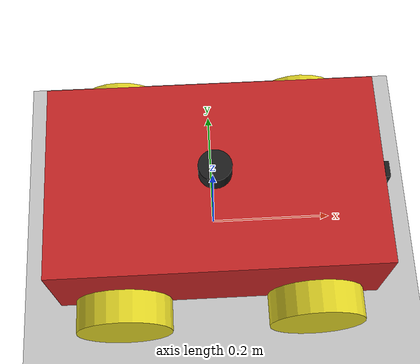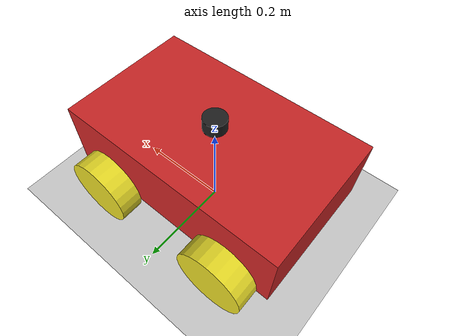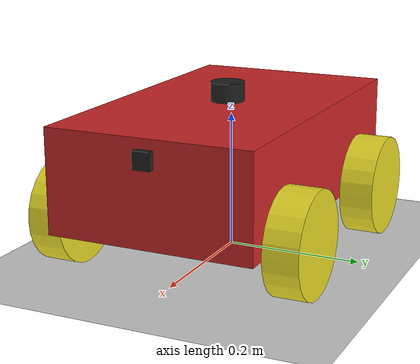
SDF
<sdf version="1.7">
 <world name="empty_world">
  <gravity>0 0 -9.81</gravity>
  <scene><ambient>0.4 0.4 0.4 1</ambient><background>0.7 0.7 0.7 1</background><shadows>1</shadows></scene>
  <model name="ground_plane">
   <static>1</static>
   <link name="link">
    <collision name="collision">
     <geometry><plane><normal>0 0 1</normal><size>100 100</size></plane></geometry>
     <surface>
      <contact><collide_bitmask>65535</collide_bitmask></contact>
      <friction><ode><mu>100</mu><mu2>50</mu2></ode></friction>
     </surface>
    </collision>
    <visual name="visual">
     <cast_shadows>0</cast_shadows>
     <geometry><plane><normal>0 0 1</normal><size>100 100</size></plane></geometry>
     <material>
      <script><uri>file://media/materials/scripts/gazebo.material</uri><name>Gazebo/Grey</name></script>
     </material>
    </visual>
   </link>
  </model>
  <light name="sun" type="directional">
   <pose>0 0 10 0 -0 0</pose>
   <diffuse>0.8 0.8 0.8 1</diffuse>
   <specular>0.2 0.2 0.2 1</specular>
   <attenuation>
    <range>1000</range>
    <constant>0.9</constant>
    <linear>0.01</linear>
    <quadratic>0.001</quadratic>
   </attenuation>
   <direction>-0.5 0.1 -0.9</direction>
   <spot><inner_angle>0</inner_angle><outer_angle>0</outer_angle><falloff>0</falloff></spot>
  </light>
  <magnetic_field>6e-06 2.3e-05 -4.2e-05</magnetic_field>
  <atmosphere type="adiabatic"/>
  <physics type="ode">
   <max_step_size>0.001</max_step_size>
   <real_time_factor>1</real_time_factor>
   <real_time_update_rate>1000</real_time_update_rate>
  </physics>
  <audio><device>default</device></audio>
  <spherical_coordinates>
   <surface_model>EARTH_WGS84</surface_model>
   <latitude_deg>0</latitude_deg>
   <longitude_deg>0</longitude_deg>
   <elevation>0</elevation>
   <heading_deg>0</heading_deg>
  </spherical_coordinates>
  <model name="differential_drive_robot">
   <link name="dummy">
    <inertial>
     <pose>0.000418 0 0.000222 0 -0 0</pose>
     <mass>61.175</mass>
     <inertia>
      <ixx>0.572662</ixx>
      <ixy>0</ixy>
      <ixz>-0.00122311</ixz>
      <iyy>1.39221</iyy>
      <iyz>0</iyz>
      <izz>1.73419</izz>
     </inertia>
    </inertial>
    <collision name="dummy_fixed_joint_lump__body_link_collision">
     <geometry><box><size>0.5 0.3 0.15</size></box></geometry>
     <surface><friction><ode><mu>0.2</mu><mu2>0.2</mu2></ode></friction></surface>
    </collision>
    <collision name="dummy_fixed_joint_lump__camera_link_collision_1">
     <pose>0.256 0 0.048 0 -0 0</pose>
     <geometry><box><size>0.05 0.05 0.05</size></box></geometry>
    </collision>
    <collision name="dummy_fixed_joint_lump__lidar_link_collision_2">
     <pose>0 0 0.088 0 -0 0</pose>
     <geometry><cylinder><length>0.06</length><radius>0.05</radius></cylinder></geometry>
    </collision>
    <visual name="dummy_fixed_joint_lump__body_link_visual">
     <geometry><box><size>0.5 0.3 0.15</size></box></geometry>
     <material>
      <script><name>Gazebo/Red</name><uri>file://media/materials/scripts/gazebo.material</uri></script>
     </material>
    </visual>
    <visual name="dummy_fixed_joint_lump__camera_link_visual_1">
     <pose>0.256 0 0.048 0 -0 0</pose>
     <geometry><box><size>0.01 0.025 0.025</size></box></geometry>
     <material>
      <script><name>Gazebo/Black</name><uri>file://media/materials/scripts/gazebo.material</uri></script>
     </material>
    </visual>
    <visual name="dummy_fixed_joint_lump__lidar_link_visual_2">
     <pose>0 0 0.088 0 -0 0</pose>
     <geometry><cylinder><length>0.03</length><radius>0.025</radius></cylinder></geometry>
     <material>
      <script><name>Gazebo/Black</name><uri>file://media/materials/scripts/gazebo.material</uri></script>
     </material>
    </visual>
    <sensor name="camera" type="camera">
     <visualize>1</visualize>
     <always_on>1</always_on>
     <update_rate>10</update_rate>
     <camera>
      <horizontal_fov>1.089</horizontal_fov>
      <image><format>R8G8B8</format><width>640</width><height>480</height></image>
      <clip><near>0.05</near><far>8</far></clip>
     </camera>
     <plugin name="camera_controller" filename="libgazebo_ros_camera.so">
      <ros>
       <remapping>image:=/camera/image_raw</remapping>
       <remapping>camera_info:=/camera/camera_info</remapping>
      </ros>
      <frame_name>camera_link_optical</frame_name>
     </plugin>
     <pose>0.256 0 0.048 0 -0 0</pose>
    </sensor>
    <sensor name="lidar" type="ray">
     <visualize>1</visualize>
     <always_on>1</always_on>
     <update_rate>10</update_rate>
     <ray>
      <scan>
       <horizontal>
        <samples>720</samples>
        <resolution>1</resolution>
        <min_angle>-3.14159</min_angle>
        <max_angle>3.14159</max_angle>
       </horizontal>
       <vertical><samples>1</samples><min_angle>0</min_angle><max_angle>0</max_angle></vertical>
      </scan>
      <range><min>0.2</min><max>4</max><resolution>0.01</resolution></range>
      <noise><type>gaussian</type><mean>0</mean><stddev>0.01</stddev></noise>
     </ray>
     <plugin name="laser_controller" filename="libgazebo_ros_ray_sensor.so">
      <ros><argument>~/out:=scan</argument></ros>
      <output_type>sensor_msgs/LaserScan</output_type>
      <frame_name>laser_frame</frame_name>
     </plugin>
     <pose>0 0 0.088 0 -0 0</pose>
    </sensor>
   </link>
   <joint name="wheel1_joint" type="revolute">
    <pose relative_to="dummy">0.15 -0.175 -0.07 0 -0 0</pose>
    <parent>dummy</parent>
    <child>wheel1_link</child>
    <axis>
     <xyz>0 1 0</xyz>
     <limit><effort>1000</effort><velocity>1000</velocity><lower>-1e+16</lower><upper>1e+16</upper></limit>
     <dynamics>
      <damping>1</damping>
      <friction>1</friction>
      <spring_reference>0</spring_reference>
      <spring_stiffness>0</spring_stiffness>
     </dynamics>
    </axis>
   </joint>
   <link name="wheel1_link">
    <pose relative_to="wheel1_joint">0 0 0 0 -0 0</pose>
    <inertial>
     <mass>2.39448</mass>
     <inertia>
      <ixx>0.00386609</ixx>
      <ixy>0</ixy>
      <ixz>0</ixz>
      <iyy>0.00386609</iyy>
      <iyz>0</iyz>
      <izz>0.00673448</izz>
     </inertia>
    </inertial>
    <collision name="wheel1_link_collision">
     <pose>0 0 0 1.57079 -0 0</pose>
     <geometry><cylinder><length>0.05</length><radius>0.075</radius></cylinder></geometry>
     <surface><friction><ode><mu>0.2</mu><mu2>0.2</mu2></ode></friction></surface>
    </collision>
    <visual name="wheel1_link_visual">
     <pose>0 0 0 1.57079 -0 0</pose>
     <geometry><cylinder><length>0.05</length><radius>0.075</radius></cylinder></geometry>
     <material>
      <script><name>Gazebo/Yellow</name><uri>file://media/materials/scripts/gazebo.material</uri></script>
     </material>
    </visual>
   </link>
   <joint name="wheel2_joint" type="revolute">
    <pose relative_to="dummy">0.15 0.175 -0.07 0 -0 0</pose>
    <parent>dummy</parent>
    <child>wheel2_link</child>
    <axis>
     <xyz>0 1 0</xyz>
     <limit><effort>1000</effort><velocity>1000</velocity><lower>-1e+16</lower><upper>1e+16</upper></limit>
     <dynamics>
      <damping>1</damping>
      <friction>1</friction>
      <spring_reference>0</spring_reference>
      <spring_stiffness>0</spring_stiffness>
     </dynamics>
    </axis>
   </joint>
   <link name="wheel2_link">
    <pose relative_to="wheel2_joint">0 0 0 0 -0 0</pose>
    <inertial>
     <mass>2.39448</mass>
     <inertia>
      <ixx>0.00386609</ixx>
      <ixy>0</ixy>
      <ixz>0</ixz>
      <iyy>0.00386609</iyy>
      <iyz>0</iyz>
      <izz>0.00673448</izz>
     </inertia>
    </inertial>
    <collision name="wheel2_link_collision">
     <pose>0 0 0 1.57079 -0 0</pose>
     <geometry><cylinder><length>0.05</length><radius>0.075</radius></cylinder></geometry>
     <surface><friction><ode><mu>0.2</mu><mu2>0.2</mu2></ode></friction></surface>
    </collision>
    <visual name="wheel2_link_visual">
     <pose>0 0 0 1.57079 -0 0</pose>
     <geometry><cylinder><length>0.05</length><radius>0.075</radius></cylinder></geometry>
     <material>
      <script><name>Gazebo/Yellow</name><uri>file://media/materials/scripts/gazebo.material</uri></script>
     </material>
    </visual>
   </link>
   <joint name="wheel3_joint" type="revolute">
    <pose relative_to="dummy">-0.15 -0.175 -0.07 0 -0 0</pose>
    <parent>dummy</parent>
    <child>wheel3_link</child>
    <axis>
     <xyz>0 1 0</xyz>
     <limit><effort>1000</effort><velocity>1000</velocity><lower>-1e+16</lower><upper>1e+16</upper></limit>
     <dynamics>
      <damping>1</damping>
      <friction>1</friction>
      <spring_reference>0</spring_reference>
      <spring_stiffness>0</spring_stiffness>
     </dynamics>
    </axis>
   </joint>
   <link name="wheel3_link">
    <pose relative_to="wheel3_joint">0 0 0 0 -0 0</pose>
    <inertial>
     <mass>2.39448</mass>
     <inertia>
      <ixx>0.00386609</ixx>
      <ixy>0</ixy>
      <ixz>0</ixz>
      <iyy>0.00386609</iyy>
      <iyz>0</iyz>
      <izz>0.00673448</izz>
     </inertia>
    </inertial>
    <collision name="wheel3_link_collision">
     <pose>0 0 0 1.57079 -0 0</pose>
     <geometry><cylinder><length>0.05</length><radius>0.075</radius></cylinder></geometry>
     <surface><friction><ode><mu>0.2</mu><mu2>0.2</mu2></ode></friction></surface>
    </collision>
    <visual name="wheel3_link_visual">
     <pose>0 0 0 1.57079 -0 0</pose>
     <geometry><cylinder><length>0.05</length><radius>0.075</radius></cylinder></geometry>
     <material>
      <script><name>Gazebo/Yellow</name><uri>file://media/materials/scripts/gazebo.material</uri></script>
     </material>
    </visual>
   </link>
   <joint name="wheel4_joint" type="revolute">
    <pose relative_to="dummy">-0.15 0.175 -0.07 0 -0 0</pose>
    <parent>dummy</parent>
    <child>wheel4_link</child>
    <axis>
     <xyz>0 1 0</xyz>
     <limit><effort>1000</effort><velocity>1000</velocity><lower>-1e+16</lower><upper>1e+16</upper></limit>
     <dynamics>
      <damping>1</damping>
      <friction>1</friction>
      <spring_reference>0</spring_reference>
      <spring_stiffness>0</spring_stiffness>
     </dynamics>
    </axis>
   </joint>
   <link name="wheel4_link">
    <pose relative_to="wheel4_joint">0 0 0 0 -0 0</pose>
    <inertial>
     <mass>2.39448</mass>
     <inertia>
      <ixx>0.00386609</ixx>
      <ixy>0</ixy>
      <ixz>0</ixz>
      <iyy>0.00386609</iyy>
      <iyz>0</iyz>
      <izz>0.00673448</izz>
     </inertia>
    </inertial>
    <collision name="wheel4_link_collision">
     <pose>0 0 0 1.57079 -0 0</pose>
     <geometry><cylinder><length>0.05</length><radius>0.075</radius></cylinder></geometry>
     <surface><friction><ode><mu>0.2</mu><mu2>0.2</mu2></ode></friction></surface>
    </collision>
    <visual name="wheel4_link_visual">
     <pose>0 0 0 1.57079 -0 0</pose>
     <geometry><cylinder><length>0.05</length><radius>0.075</radius></cylinder></geometry>
     <material>
      <script><name>Gazebo/Yellow</name><uri>file://media/materials/scripts/gazebo.material</uri></script>
     </material>
    </visual>
   </link>
   <static>0</static>
   <plugin name="differential_drive_controller" filename="libgazebo_ros_diff_drive.so">
    <num_wheel_pairs>2</num_wheel_pairs>
    <left_joint>wheel2_joint</left_joint>
    <right_joint>wheel1_joint</right_joint>
    <left_joint>wheel4_joint</left_joint>
    <right_joint>wheel3_joint</right_joint>
    <wheel_separation>0.7</wheel_separation>
    <wheel_diameter>0.3</wheel_diameter>
    <max_wheel_torque>1000</max_wheel_torque>
    <max_wheel_acceleration>5.0</max_wheel_acceleration>
    <publish_odom>1</publish_odom>
    <publish_odom_tf>1</publish_odom_tf>
    <publish_wheel_tf>1</publish_wheel_tf>
    <odometry_frame>odom</odometry_frame>
    <robot_base_frame>dummy</robot_base_frame>
    <command_topic>cmd_vel</command_topic>
    <odometry_topic>odom</odometry_topic>
   </plugin>
   <pose>0.003234 -0.004743 0.144992 -4.6e-05 4e-06 0.000652</pose>
  </model>
 </world>
</sdf>
